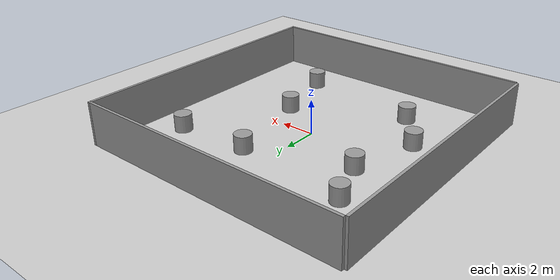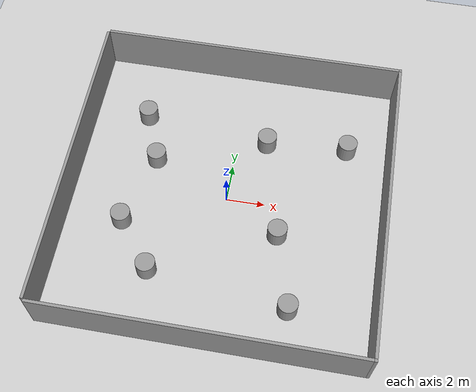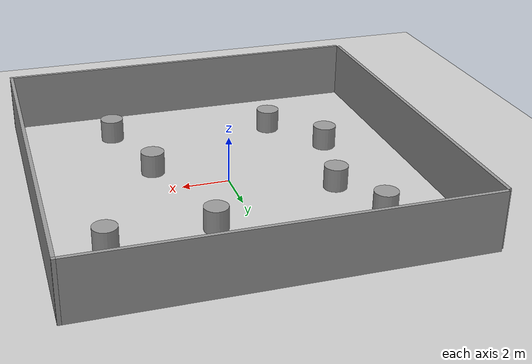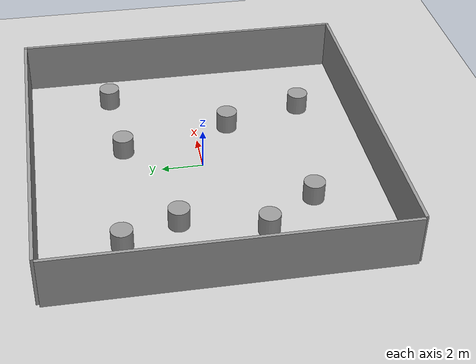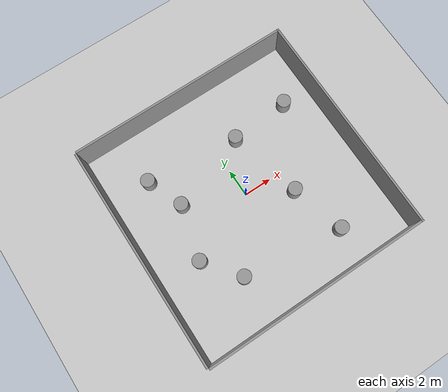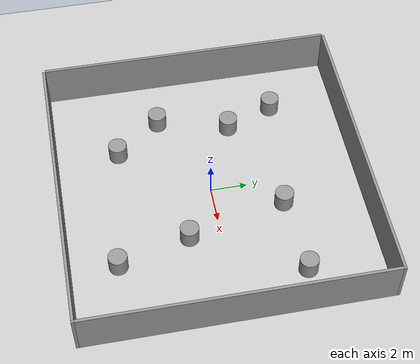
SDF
<sdf version="1.7">
 <world name="default">
  <light name="sun" type="directional">
   <pose>0 0 10 0 -0 0</pose>
   <diffuse>0.8 0.8 0.8 1</diffuse>
   <specular>0.2 0.2 0.2 1</specular>
   <attenuation>
    <range>1000</range>
    <constant>0.9</constant>
    <linear>0.01</linear>
    <quadratic>0.001</quadratic>
   </attenuation>
   <direction>-0.5 0.1 -0.9</direction>
   <spot><inner_angle>0</inner_angle><outer_angle>0</outer_angle><falloff>0</falloff></spot>
  </light>
  <model name="ground_plane">
   <static>1</static>
   <link name="link">
    <collision name="collision">
     <geometry><plane><normal>0 0 1</normal><size>100 100</size></plane></geometry>
     <surface>
      <contact><collide_bitmask>65535</collide_bitmask></contact>
      <friction><ode><mu>100</mu><mu2>50</mu2></ode></friction>
     </surface>
    </collision>
    <visual name="visual">
     <cast_shadows>0</cast_shadows>
     <geometry><plane><normal>0 0 1</normal><size>100 100</size></plane></geometry>
     <material>
      <script><uri>file://media/materials/scripts/gazebo.material</uri><name>Gazebo/Grey</name></script>
     </material>
    </visual>
   </link>
  </model>
  <gravity>0 0 -9.8</gravity>
  <magnetic_field>6e-06 2.3e-05 -4.2e-05</magnetic_field>
  <atmosphere type="adiabatic"/>
  <physics type="ode">
   <max_step_size>0.001</max_step_size>
   <real_time_factor>1</real_time_factor>
   <real_time_update_rate>1000</real_time_update_rate>
  </physics>
  <scene><ambient>0.4 0.4 0.4 1</ambient><background>0.7 0.7 0.7 1</background><shadows>1</shadows></scene>
  <spherical_coordinates>
   <surface_model>EARTH_WGS84</surface_model>
   <latitude_deg>0</latitude_deg>
   <longitude_deg>0</longitude_deg>
   <elevation>0</elevation>
   <heading_deg>0</heading_deg>
  </spherical_coordinates>
  <model name="EmptyWorld_8size">
   <link name="Wall_2">
    <collision name="Wall_2_Collision">
     <geometry><box><size>16 0.15 2.5</size></box></geometry>
     <pose>0 0 1.25 0 -0 0</pose>
    </collision>
    <visual name="Wall_2_Visual">
     <pose>0 0 1.25 0 -0 0</pose>
     <geometry><box><size>16 0.15 2.5</size></box></geometry>
     <material>
      <script><uri>file://media/materials/scripts/gazebo.material</uri><name>Gazebo/Grey</name></script>
      <ambient>1 1 1 1</ambient>
     </material>
     <meta><layer>0</layer></meta>
    </visual>
    <pose>-8.075 -0 0 0 -0 1.5708</pose>
   </link>
   <link name="Wall_4">
    <collision name="Wall_4_Collision">
     <geometry><box><size>16 0.15 2.5</size></box></geometry>
     <pose>0 0 1.25 0 -0 0</pose>
    </collision>
    <visual name="Wall_4_Visual">
     <pose>0 0 1.25 0 -0 0</pose>
     <geometry><box><size>16 0.15 2.5</size></box></geometry>
     <material>
      <script><uri>file://media/materials/scripts/gazebo.material</uri><name>Gazebo/Grey</name></script>
      <ambient>1 1 1 1</ambient>
     </material>
     <meta><layer>0</layer></meta>
    </visual>
    <pose>-0 -8.075 0 0 -0 0</pose>
   </link>
   <link name="Wall_5">
    <collision name="Wall_5_Collision">
     <geometry><box><size>0.15 0.15 2.5</size></box></geometry>
     <pose>0 0 1.25 0 -0 0</pose>
    </collision>
    <visual name="Wall_5_Visual">
     <pose>0 0 1.25 0 -0 0</pose>
     <geometry><box><size>0.15 0.15 2.5</size></box></geometry>
     <material>
      <script><uri>file://media/materials/scripts/gazebo.material</uri><name>Gazebo/Grey</name></script>
      <ambient>1 1 1 1</ambient>
     </material>
     <meta><layer>0</layer></meta>
    </visual>
    <pose>8.075 -8.075 0 0 -0 0</pose>
   </link>
   <link name="Wall_6">
    <collision name="Wall_6_Collision">
     <geometry><box><size>16 0.15 2.5</size></box></geometry>
     <pose>0 0 1.25 0 -0 0</pose>
    </collision>
    <visual name="Wall_6_Visual">
     <pose>0 0 1.25 0 -0 0</pose>
     <geometry><box><size>16 0.15 2.5</size></box></geometry>
     <material>
      <script><uri>file://media/materials/scripts/gazebo.material</uri><name>Gazebo/Grey</name></script>
      <ambient>1 1 1 1</ambient>
     </material>
     <meta><layer>0</layer></meta>
    </visual>
    <pose>8.075 -0 0 0 -0 1.5708</pose>
   </link>
   <link name="Wall_7">
    <collision name="Wall_7_Collision">
     <geometry><box><size>0.15 0.15 2.5</size></box></geometry>
     <pose>0 0 1.25 0 -0 0</pose>
    </collision>
    <visual name="Wall_7_Visual">
     <pose>0 0 1.25 0 -0 0</pose>
     <geometry><box><size>0.15 0.15 2.5</size></box></geometry>
     <material>
      <script><uri>file://media/materials/scripts/gazebo.material</uri><name>Gazebo/Grey</name></script>
      <ambient>1 1 1 1</ambient>
     </material>
     <meta><layer>0</layer></meta>
    </visual>
    <pose>8.075 8.075 0 0 -0 0</pose>
   </link>
   <link name="Wall_8">
    <collision name="Wall_8_Collision">
     <geometry><box><size>16 0.15 2.5</size></box></geometry>
     <pose>0 0 1.25 0 -0 0</pose>
    </collision>
    <visual name="Wall_8_Visual">
     <pose>0 0 1.25 0 -0 0</pose>
     <geometry><box><size>16 0.15 2.5</size></box></geometry>
     <material>
      <script><uri>file://media/materials/scripts/gazebo.material</uri><name>Gazebo/Grey</name></script>
      <ambient>1 1 1 1</ambient>
     </material>
     <meta><layer>0</layer></meta>
    </visual>
    <pose>-0 8.075 0 0 -0 3.14159</pose>
   </link>
   <static>1</static>
  </model>
  <model name="unit_cylinder">
   <pose>-5.10762 4.35877 0.499992 -3e-06 4e-06 0</pose>
   <link name="link">
    <inertial>
     <mass>1</mass>
     <inertia><ixx>0.145833</ixx><ixy>0</ixy><ixz>0</ixz><iyy>0.145833</iyy><iyz>0</iyz><izz>0.125</izz></inertia>
    </inertial>
    <collision name="collision">
     <geometry><cylinder><radius>0.5</radius><length>1</length></cylinder></geometry>
    </collision>
    <visual name="visual">
     <geometry><cylinder><radius>0.5</radius><length>1</length></cylinder></geometry>
     <material>
      <script><name>Gazebo/Grey</name><uri>file://media/materials/scripts/gazebo.material</uri></script>
     </material>
    </visual>
   </link>
  </model>
  <model name="unit_cylinder_0">
   <pose>1.575 3.67434 0.499998 3e-06 -4e-06 0</pose>
   <link name="link">
    <inertial>
     <mass>1</mass>
     <inertia><ixx>0.145833</ixx><ixy>0</ixy><ixz>0</ixz><iyy>0.145833</iyy><iyz>0</iyz><izz>0.125</izz></inertia>
    </inertial>
    <collision name="collision">
     <geometry><cylinder><radius>0.5</radius><length>1</length></cylinder></geometry>
    </collision>
    <visual name="visual">
     <geometry><cylinder><radius>0.5</radius><length>1</length></cylinder></geometry>
     <material>
      <script><name>Gazebo/Grey</name><uri>file://media/materials/scripts/gazebo.material</uri></script>
     </material>
    </visual>
   </link>
  </model>
  <model name="unit_cylinder_1">
   <pose>5.86043 3.98542 0.499998 3e-06 -4e-06 0</pose>
   <link name="link">
    <inertial>
     <mass>1</mass>
     <inertia><ixx>0.145833</ixx><ixy>0</ixy><ixz>0</ixz><iyy>0.145833</iyy><iyz>0</iyz><izz>0.125</izz></inertia>
    </inertial>
    <collision name="collision">
     <geometry><cylinder><radius>0.5</radius><length>1</length></cylinder></geometry>
    </collision>
    <visual name="visual">
     <geometry><cylinder><radius>0.5</radius><length>1</length></cylinder></geometry>
     <material>
      <script><name>Gazebo/Grey</name><uri>file://media/materials/scripts/gazebo.material</uri></script>
     </material>
    </visual>
   </link>
  </model>
  <model name="unit_cylinder_2">
   <pose>-4.07962 1.73347 0.499992 -3e-06 -4e-06 -0</pose>
   <link name="link">
    <inertial>
     <mass>1</mass>
     <inertia><ixx>0.145833</ixx><ixy>0</ixy><ixz>0</ixz><iyy>0.145833</iyy><iyz>0</iyz><izz>0.125</izz></inertia>
    </inertial>
    <collision name="collision">
     <geometry><cylinder><radius>0.5</radius><length>1</length></cylinder></geometry>
    </collision>
    <visual name="visual">
     <geometry><cylinder><radius>0.5</radius><length>1</length></cylinder></geometry>
     <material>
      <script><name>Gazebo/Grey</name><uri>file://media/materials/scripts/gazebo.material</uri></script>
     </material>
    </visual>
   </link>
  </model>
  <model name="unit_cylinder_3">
   <pose>-5.09319 -2.15051 0.499993 -3e-06 -3e-06 0</pose>
   <link name="link">
    <inertial>
     <mass>1</mass>
     <inertia><ixx>0.145833</ixx><ixy>0</ixy><ixz>0</ixz><iyy>0.145833</iyy><iyz>0</iyz><izz>0.125</izz></inertia>
    </inertial>
    <collision name="collision">
     <geometry><cylinder><radius>0.5</radius><length>1</length></cylinder></geometry>
    </collision>
    <visual name="visual">
     <geometry><cylinder><radius>0.5</radius><length>1</length></cylinder></geometry>
     <material>
      <script><name>Gazebo/Grey</name><uri>file://media/materials/scripts/gazebo.material</uri></script>
     </material>
    </visual>
   </link>
  </model>
  <model name="unit_cylinder_4">
   <pose>-3.2293 -4.62972 0.499997 3e-06 4e-06 -0</pose>
   <link name="link">
    <inertial>
     <mass>1</mass>
     <inertia><ixx>0.145833</ixx><ixy>0</ixy><ixz>0</ixz><iyy>0.145833</iyy><iyz>0</iyz><izz>0.125</izz></inertia>
    </inertial>
    <collision name="collision">
     <geometry><cylinder><radius>0.5</radius><length>1</length></cylinder></geometry>
    </collision>
    <visual name="visual">
     <geometry><cylinder><radius>0.5</radius><length>1</length></cylinder></geometry>
     <material>
      <script><name>Gazebo/Grey</name><uri>file://media/materials/scripts/gazebo.material</uri></script>
     </material>
    </visual>
   </link>
  </model>
  <model name="unit_cylinder_5">
   <pose>2.88611 -1.66195 0.499993 -3e-06 -4e-06 -0</pose>
   <link name="link">
    <inertial>
     <mass>1</mass>
     <inertia><ixx>0.145833</ixx><ixy>0</ixy><ixz>0</ixz><iyy>0.145833</iyy><iyz>0</iyz><izz>0.125</izz></inertia>
    </inertial>
    <collision name="collision">
     <geometry><cylinder><radius>0.5</radius><length>1</length></cylinder></geometry>
    </collision>
    <visual name="visual">
     <geometry><cylinder><radius>0.5</radius><length>1</length></cylinder></geometry>
     <material>
      <script><name>Gazebo/Grey</name><uri>file://media/materials/scripts/gazebo.material</uri></script>
     </material>
    </visual>
   </link>
  </model>
  <model name="unit_cylinder_6">
   <pose>3.94631 -5.54 0.499997 3e-06 4e-06 -0</pose>
   <link name="link">
    <inertial>
     <mass>1</mass>
     <inertia><ixx>0.145833</ixx><ixy>0</ixy><ixz>0</ixz><iyy>0.145833</iyy><iyz>0</iyz><izz>0.125</izz></inertia>
    </inertial>
    <collision name="collision">
     <geometry><cylinder><radius>0.5</radius><length>1</length></cylinder></geometry>
    </collision>
    <visual name="visual">
     <geometry><cylinder><radius>0.5</radius><length>1</length></cylinder></geometry>
     <material>
      <script><name>Gazebo/Grey</name><uri>file://media/materials/scripts/gazebo.material</uri></script>
     </material>
    </visual>
   </link>
  </model>
 </world>
</sdf>
